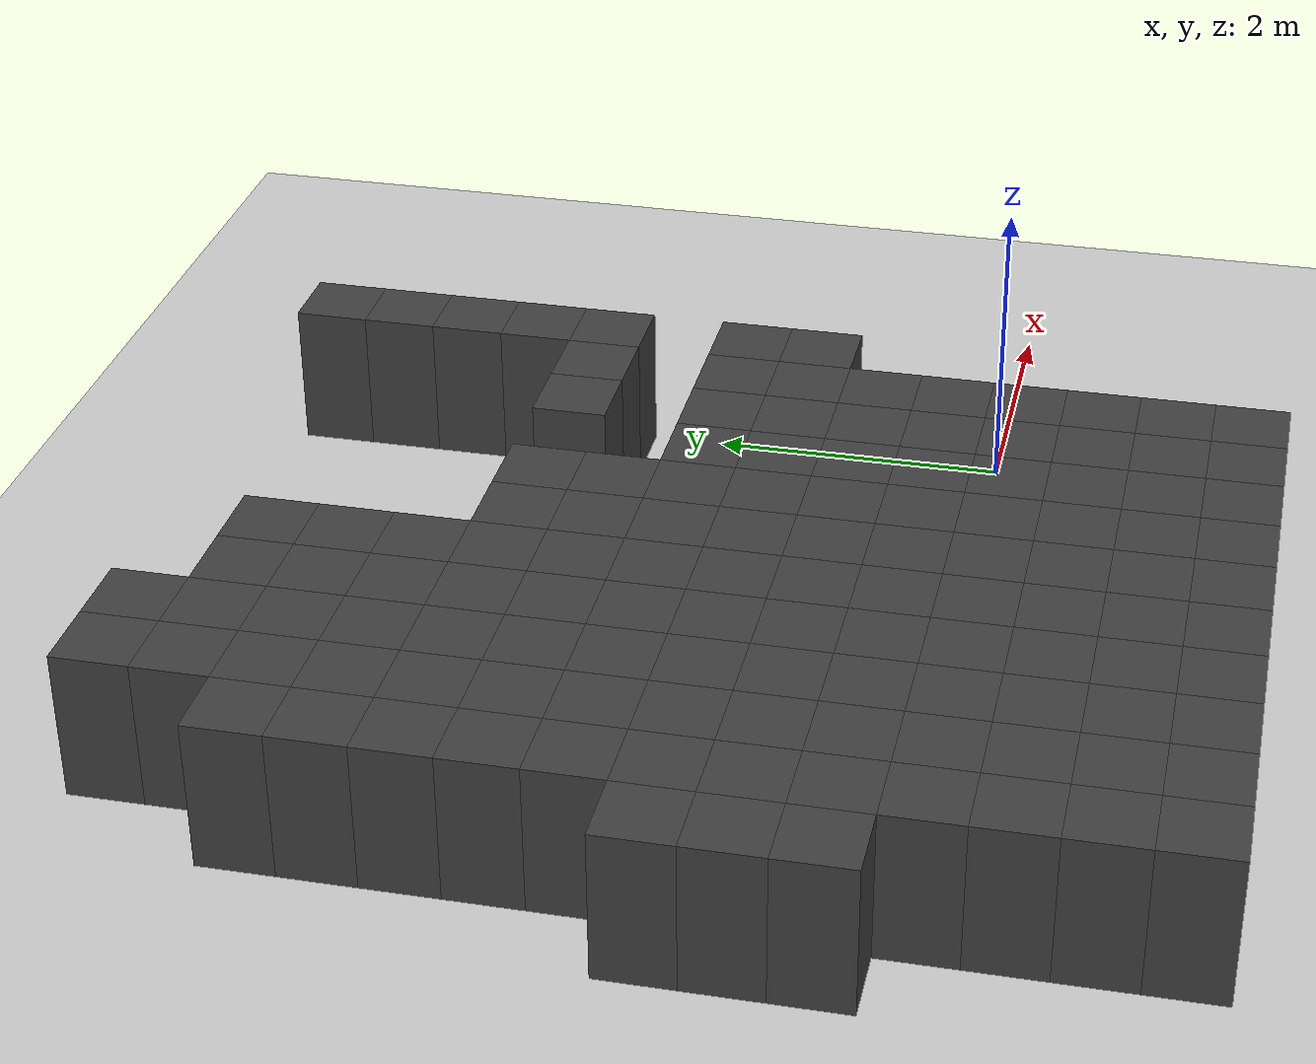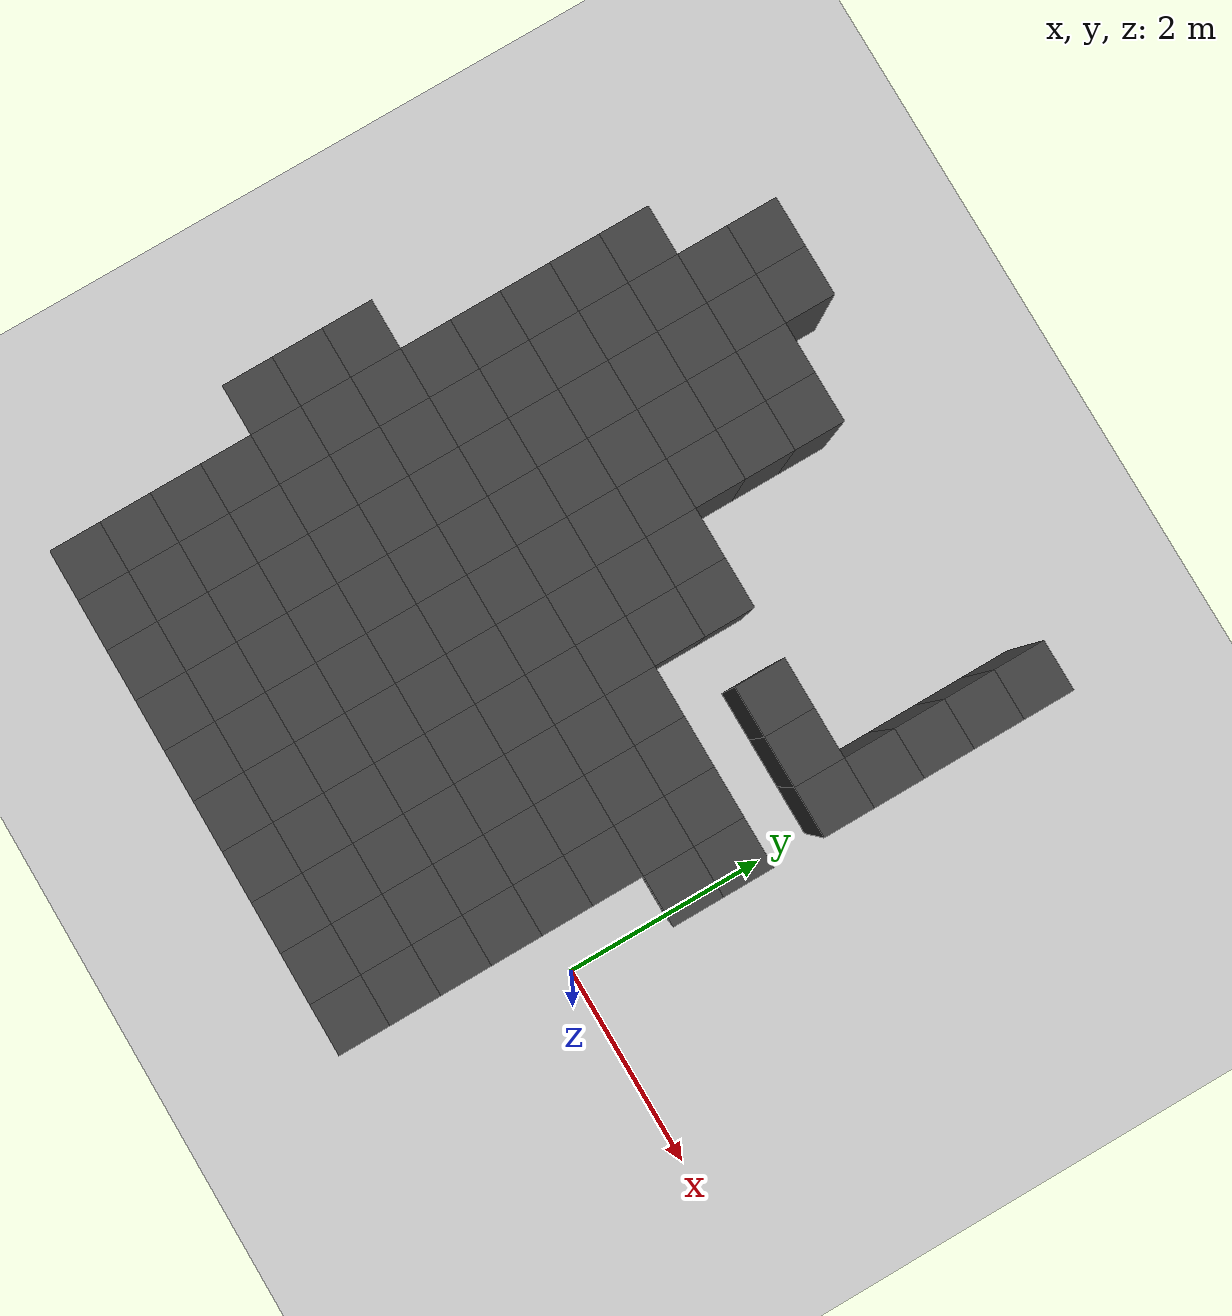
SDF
<sdf version="1.7">
 <world name="map_14888">
  <model name="ground_plane">
   <static>true</static>
   <link name="link">
    <collision name="collision">
     <geometry><plane><normal>0 0 1</normal><size>200 200</size></plane></geometry>
    </collision>
    <visual name="visual">
     <geometry><plane><normal>0 0 1</normal><size>200 200</size></plane></geometry>
     <material><ambient>0.8 0.8 0.8 1</ambient><diffuse>0.8 0.8 0.8 1</diffuse></material>
    </visual>
   </link>
  </model>
  <model name="maze_environment">
   <static>true</static>
   <link name="wall_570">
    <pose>-4.750 4.750 0.500 0 0 0</pose>
    <collision name="col"><geometry><box><size>0.5 0.5 1.0</size></box></geometry></collision>
    <visual name="vis">
     <geometry><box><size>0.5 0.5 1.0</size></box></geometry>
     <material><ambient>0.15 0.15 0.15 1</ambient><diffuse>0.25 0.25 0.25 1</diffuse></material>
    </visual>
   </link>
   <link name="wall_571">
    <pose>-4.250 4.750 0.500 0 0 0</pose>
    <collision name="col"><geometry><box><size>0.5 0.5 1.0</size></box></geometry></collision>
    <visual name="vis">
     <geometry><box><size>0.5 0.5 1.0</size></box></geometry>
     <material><ambient>0.15 0.15 0.15 1</ambient><diffuse>0.25 0.25 0.25 1</diffuse></material>
    </visual>
   </link>
   <link name="wall_572">
    <pose>-0.250 4.750 0.500 0 0 0</pose>
    <collision name="col"><geometry><box><size>0.5 0.5 1.0</size></box></geometry></collision>
    <visual name="vis">
     <geometry><box><size>0.5 0.5 1.0</size></box></geometry>
     <material><ambient>0.15 0.15 0.15 1</ambient><diffuse>0.25 0.25 0.25 1</diffuse></material>
    </visual>
   </link>
   <link name="wall_598">
    <pose>-4.750 4.250 0.500 0 0 0</pose>
    <collision name="col"><geometry><box><size>0.5 0.5 1.0</size></box></geometry></collision>
    <visual name="vis">
     <geometry><box><size>0.5 0.5 1.0</size></box></geometry>
     <material><ambient>0.15 0.15 0.15 1</ambient><diffuse>0.25 0.25 0.25 1</diffuse></material>
    </visual>
   </link>
   <link name="wall_599">
    <pose>-4.250 4.250 0.500 0 0 0</pose>
    <collision name="col"><geometry><box><size>0.5 0.5 1.0</size></box></geometry></collision>
    <visual name="vis">
     <geometry><box><size>0.5 0.5 1.0</size></box></geometry>
     <material><ambient>0.15 0.15 0.15 1</ambient><diffuse>0.25 0.25 0.25 1</diffuse></material>
    </visual>
   </link>
   <link name="wall_600">
    <pose>-3.750 4.250 0.500 0 0 0</pose>
    <collision name="col"><geometry><box><size>0.5 0.5 1.0</size></box></geometry></collision>
    <visual name="vis">
     <geometry><box><size>0.5 0.5 1.0</size></box></geometry>
     <material><ambient>0.15 0.15 0.15 1</ambient><diffuse>0.25 0.25 0.25 1</diffuse></material>
    </visual>
   </link>
   <link name="wall_601">
    <pose>-3.250 4.250 0.500 0 0 0</pose>
    <collision name="col"><geometry><box><size>0.5 0.5 1.0</size></box></geometry></collision>
    <visual name="vis">
     <geometry><box><size>0.5 0.5 1.0</size></box></geometry>
     <material><ambient>0.15 0.15 0.15 1</ambient><diffuse>0.25 0.25 0.25 1</diffuse></material>
    </visual>
   </link>
   <link name="wall_602">
    <pose>-0.250 4.250 0.500 0 0 0</pose>
    <collision name="col"><geometry><box><size>0.5 0.5 1.0</size></box></geometry></collision>
    <visual name="vis">
     <geometry><box><size>0.5 0.5 1.0</size></box></geometry>
     <material><ambient>0.15 0.15 0.15 1</ambient><diffuse>0.25 0.25 0.25 1</diffuse></material>
    </visual>
   </link>
   <link name="wall_622">
    <pose>-5.250 3.750 0.500 0 0 0</pose>
    <collision name="col"><geometry><box><size>0.5 0.5 1.0</size></box></geometry></collision>
    <visual name="vis">
     <geometry><box><size>0.5 0.5 1.0</size></box></geometry>
     <material><ambient>0.15 0.15 0.15 1</ambient><diffuse>0.25 0.25 0.25 1</diffuse></material>
    </visual>
   </link>
   <link name="wall_623">
    <pose>-4.750 3.750 0.500 0 0 0</pose>
    <collision name="col"><geometry><box><size>0.5 0.5 1.0</size></box></geometry></collision>
    <visual name="vis">
     <geometry><box><size>0.5 0.5 1.0</size></box></geometry>
     <material><ambient>0.15 0.15 0.15 1</ambient><diffuse>0.25 0.25 0.25 1</diffuse></material>
    </visual>
   </link>
   <link name="wall_624">
    <pose>-4.250 3.750 0.500 0 0 0</pose>
    <collision name="col"><geometry><box><size>0.5 0.5 1.0</size></box></geometry></collision>
    <visual name="vis">
     <geometry><box><size>0.5 0.5 1.0</size></box></geometry>
     <material><ambient>0.15 0.15 0.15 1</ambient><diffuse>0.25 0.25 0.25 1</diffuse></material>
    </visual>
   </link>
   <link name="wall_625">
    <pose>-3.750 3.750 0.500 0 0 0</pose>
    <collision name="col"><geometry><box><size>0.5 0.5 1.0</size></box></geometry></collision>
    <visual name="vis">
     <geometry><box><size>0.5 0.5 1.0</size></box></geometry>
     <material><ambient>0.15 0.15 0.15 1</ambient><diffuse>0.25 0.25 0.25 1</diffuse></material>
    </visual>
   </link>
   <link name="wall_626">
    <pose>-3.250 3.750 0.500 0 0 0</pose>
    <collision name="col"><geometry><box><size>0.5 0.5 1.0</size></box></geometry></collision>
    <visual name="vis">
     <geometry><box><size>0.5 0.5 1.0</size></box></geometry>
     <material><ambient>0.15 0.15 0.15 1</ambient><diffuse>0.25 0.25 0.25 1</diffuse></material>
    </visual>
   </link>
   <link name="wall_627">
    <pose>-0.250 3.750 0.500 0 0 0</pose>
    <collision name="col"><geometry><box><size>0.5 0.5 1.0</size></box></geometry></collision>
    <visual name="vis">
     <geometry><box><size>0.5 0.5 1.0</size></box></geometry>
     <material><ambient>0.15 0.15 0.15 1</ambient><diffuse>0.25 0.25 0.25 1</diffuse></material>
    </visual>
   </link>
   <link name="wall_642">
    <pose>-5.250 3.250 0.500 0 0 0</pose>
    <collision name="col"><geometry><box><size>0.5 0.5 1.0</size></box></geometry></collision>
    <visual name="vis">
     <geometry><box><size>0.5 0.5 1.0</size></box></geometry>
     <material><ambient>0.15 0.15 0.15 1</ambient><diffuse>0.25 0.25 0.25 1</diffuse></material>
    </visual>
   </link>
   <link name="wall_643">
    <pose>-4.750 3.250 0.500 0 0 0</pose>
    <collision name="col"><geometry><box><size>0.5 0.5 1.0</size></box></geometry></collision>
    <visual name="vis">
     <geometry><box><size>0.5 0.5 1.0</size></box></geometry>
     <material><ambient>0.15 0.15 0.15 1</ambient><diffuse>0.25 0.25 0.25 1</diffuse></material>
    </visual>
   </link>
   <link name="wall_644">
    <pose>-4.250 3.250 0.500 0 0 0</pose>
    <collision name="col"><geometry><box><size>0.5 0.5 1.0</size></box></geometry></collision>
    <visual name="vis">
     <geometry><box><size>0.5 0.5 1.0</size></box></geometry>
     <material><ambient>0.15 0.15 0.15 1</ambient><diffuse>0.25 0.25 0.25 1</diffuse></material>
    </visual>
   </link>
   <link name="wall_645">
    <pose>-3.750 3.250 0.500 0 0 0</pose>
    <collision name="col"><geometry><box><size>0.5 0.5 1.0</size></box></geometry></collision>
    <visual name="vis">
     <geometry><box><size>0.5 0.5 1.0</size></box></geometry>
     <material><ambient>0.15 0.15 0.15 1</ambient><diffuse>0.25 0.25 0.25 1</diffuse></material>
    </visual>
   </link>
   <link name="wall_646">
    <pose>-3.250 3.250 0.500 0 0 0</pose>
    <collision name="col"><geometry><box><size>0.5 0.5 1.0</size></box></geometry></collision>
    <visual name="vis">
     <geometry><box><size>0.5 0.5 1.0</size></box></geometry>
     <material><ambient>0.15 0.15 0.15 1</ambient><diffuse>0.25 0.25 0.25 1</diffuse></material>
    </visual>
   </link>
   <link name="wall_647">
    <pose>-0.250 3.250 0.500 0 0 0</pose>
    <collision name="col"><geometry><box><size>0.5 0.5 1.0</size></box></geometry></collision>
    <visual name="vis">
     <geometry><box><size>0.5 0.5 1.0</size></box></geometry>
     <material><ambient>0.15 0.15 0.15 1</ambient><diffuse>0.25 0.25 0.25 1</diffuse></material>
    </visual>
   </link>
   <link name="wall_662">
    <pose>-5.250 2.750 0.500 0 0 0</pose>
    <collision name="col"><geometry><box><size>0.5 0.5 1.0</size></box></geometry></collision>
    <visual name="vis">
     <geometry><box><size>0.5 0.5 1.0</size></box></geometry>
     <material><ambient>0.15 0.15 0.15 1</ambient><diffuse>0.25 0.25 0.25 1</diffuse></material>
    </visual>
   </link>
   <link name="wall_663">
    <pose>-4.750 2.750 0.500 0 0 0</pose>
    <collision name="col"><geometry><box><size>0.5 0.5 1.0</size></box></geometry></collision>
    <visual name="vis">
     <geometry><box><size>0.5 0.5 1.0</size></box></geometry>
     <material><ambient>0.15 0.15 0.15 1</ambient><diffuse>0.25 0.25 0.25 1</diffuse></material>
    </visual>
   </link>
   <link name="wall_664">
    <pose>-4.250 2.750 0.500 0 0 0</pose>
    <collision name="col"><geometry><box><size>0.5 0.5 1.0</size></box></geometry></collision>
    <visual name="vis">
     <geometry><box><size>0.5 0.5 1.0</size></box></geometry>
     <material><ambient>0.15 0.15 0.15 1</ambient><diffuse>0.25 0.25 0.25 1</diffuse></material>
    </visual>
   </link>
   <link name="wall_665">
    <pose>-3.750 2.750 0.500 0 0 0</pose>
    <collision name="col"><geometry><box><size>0.5 0.5 1.0</size></box></geometry></collision>
    <visual name="vis">
     <geometry><box><size>0.5 0.5 1.0</size></box></geometry>
     <material><ambient>0.15 0.15 0.15 1</ambient><diffuse>0.25 0.25 0.25 1</diffuse></material>
    </visual>
   </link>
   <link name="wall_666">
    <pose>-3.250 2.750 0.500 0 0 0</pose>
    <collision name="col"><geometry><box><size>0.5 0.5 1.0</size></box></geometry></collision>
    <visual name="vis">
     <geometry><box><size>0.5 0.5 1.0</size></box></geometry>
     <material><ambient>0.15 0.15 0.15 1</ambient><diffuse>0.25 0.25 0.25 1</diffuse></material>
    </visual>
   </link>
   <link name="wall_667">
    <pose>-2.750 2.750 0.500 0 0 0</pose>
    <collision name="col"><geometry><box><size>0.5 0.5 1.0</size></box></geometry></collision>
    <visual name="vis">
     <geometry><box><size>0.5 0.5 1.0</size></box></geometry>
     <material><ambient>0.15 0.15 0.15 1</ambient><diffuse>0.25 0.25 0.25 1</diffuse></material>
    </visual>
   </link>
   <link name="wall_668">
    <pose>-2.250 2.750 0.500 0 0 0</pose>
    <collision name="col"><geometry><box><size>0.5 0.5 1.0</size></box></geometry></collision>
    <visual name="vis">
     <geometry><box><size>0.5 0.5 1.0</size></box></geometry>
     <material><ambient>0.15 0.15 0.15 1</ambient><diffuse>0.25 0.25 0.25 1</diffuse></material>
    </visual>
   </link>
   <link name="wall_669">
    <pose>-1.250 2.750 0.500 0 0 0</pose>
    <collision name="col"><geometry><box><size>0.5 0.5 1.0</size></box></geometry></collision>
    <visual name="vis">
     <geometry><box><size>0.5 0.5 1.0</size></box></geometry>
     <material><ambient>0.15 0.15 0.15 1</ambient><diffuse>0.25 0.25 0.25 1</diffuse></material>
    </visual>
   </link>
   <link name="wall_670">
    <pose>-0.750 2.750 0.500 0 0 0</pose>
    <collision name="col"><geometry><box><size>0.5 0.5 1.0</size></box></geometry></collision>
    <visual name="vis">
     <geometry><box><size>0.5 0.5 1.0</size></box></geometry>
     <material><ambient>0.15 0.15 0.15 1</ambient><diffuse>0.25 0.25 0.25 1</diffuse></material>
    </visual>
   </link>
   <link name="wall_671">
    <pose>-0.250 2.750 0.500 0 0 0</pose>
    <collision name="col"><geometry><box><size>0.5 0.5 1.0</size></box></geometry></collision>
    <visual name="vis">
     <geometry><box><size>0.5 0.5 1.0</size></box></geometry>
     <material><ambient>0.15 0.15 0.15 1</ambient><diffuse>0.25 0.25 0.25 1</diffuse></material>
    </visual>
   </link>
   <link name="wall_686">
    <pose>-5.250 2.250 0.500 0 0 0</pose>
    <collision name="col"><geometry><box><size>0.5 0.5 1.0</size></box></geometry></collision>
    <visual name="vis">
     <geometry><box><size>0.5 0.5 1.0</size></box></geometry>
     <material><ambient>0.15 0.15 0.15 1</ambient><diffuse>0.25 0.25 0.25 1</diffuse></material>
    </visual>
   </link>
   <link name="wall_687">
    <pose>-4.750 2.250 0.500 0 0 0</pose>
    <collision name="col"><geometry><box><size>0.5 0.5 1.0</size></box></geometry></collision>
    <visual name="vis">
     <geometry><box><size>0.5 0.5 1.0</size></box></geometry>
     <material><ambient>0.15 0.15 0.15 1</ambient><diffuse>0.25 0.25 0.25 1</diffuse></material>
    </visual>
   </link>
   <link name="wall_688">
    <pose>-4.250 2.250 0.500 0 0 0</pose>
    <collision name="col"><geometry><box><size>0.5 0.5 1.0</size></box></geometry></collision>
    <visual name="vis">
     <geometry><box><size>0.5 0.5 1.0</size></box></geometry>
     <material><ambient>0.15 0.15 0.15 1</ambient><diffuse>0.25 0.25 0.25 1</diffuse></material>
    </visual>
   </link>
   <link name="wall_689">
    <pose>-3.750 2.250 0.500 0 0 0</pose>
    <collision name="col"><geometry><box><size>0.5 0.5 1.0</size></box></geometry></collision>
    <visual name="vis">
     <geometry><box><size>0.5 0.5 1.0</size></box></geometry>
     <material><ambient>0.15 0.15 0.15 1</ambient><diffuse>0.25 0.25 0.25 1</diffuse></material>
    </visual>
   </link>
   <link name="wall_690">
    <pose>-3.250 2.250 0.500 0 0 0</pose>
    <collision name="col"><geometry><box><size>0.5 0.5 1.0</size></box></geometry></collision>
    <visual name="vis">
     <geometry><box><size>0.5 0.5 1.0</size></box></geometry>
     <material><ambient>0.15 0.15 0.15 1</ambient><diffuse>0.25 0.25 0.25 1</diffuse></material>
    </visual>
   </link>
   <link name="wall_691">
    <pose>-2.750 2.250 0.500 0 0 0</pose>
    <collision name="col"><geometry><box><size>0.5 0.5 1.0</size></box></geometry></collision>
    <visual name="vis">
     <geometry><box><size>0.5 0.5 1.0</size></box></geometry>
     <material><ambient>0.15 0.15 0.15 1</ambient><diffuse>0.25 0.25 0.25 1</diffuse></material>
    </visual>
   </link>
   <link name="wall_692">
    <pose>-2.250 2.250 0.500 0 0 0</pose>
    <collision name="col"><geometry><box><size>0.5 0.5 1.0</size></box></geometry></collision>
    <visual name="vis">
     <geometry><box><size>0.5 0.5 1.0</size></box></geometry>
     <material><ambient>0.15 0.15 0.15 1</ambient><diffuse>0.25 0.25 0.25 1</diffuse></material>
    </visual>
   </link>
   <link name="wall_710">
    <pose>-5.250 1.750 0.500 0 0 0</pose>
    <collision name="col"><geometry><box><size>0.5 0.5 1.0</size></box></geometry></collision>
    <visual name="vis">
     <geometry><box><size>0.5 0.5 1.0</size></box></geometry>
     <material><ambient>0.15 0.15 0.15 1</ambient><diffuse>0.25 0.25 0.25 1</diffuse></material>
    </visual>
   </link>
   <link name="wall_711">
    <pose>-4.750 1.750 0.500 0 0 0</pose>
    <collision name="col"><geometry><box><size>0.5 0.5 1.0</size></box></geometry></collision>
    <visual name="vis">
     <geometry><box><size>0.5 0.5 1.0</size></box></geometry>
     <material><ambient>0.15 0.15 0.15 1</ambient><diffuse>0.25 0.25 0.25 1</diffuse></material>
    </visual>
   </link>
   <link name="wall_712">
    <pose>-4.250 1.750 0.500 0 0 0</pose>
    <collision name="col"><geometry><box><size>0.5 0.5 1.0</size></box></geometry></collision>
    <visual name="vis">
     <geometry><box><size>0.5 0.5 1.0</size></box></geometry>
     <material><ambient>0.15 0.15 0.15 1</ambient><diffuse>0.25 0.25 0.25 1</diffuse></material>
    </visual>
   </link>
   <link name="wall_713">
    <pose>-3.750 1.750 0.500 0 0 0</pose>
    <collision name="col"><geometry><box><size>0.5 0.5 1.0</size></box></geometry></collision>
    <visual name="vis">
     <geometry><box><size>0.5 0.5 1.0</size></box></geometry>
     <material><ambient>0.15 0.15 0.15 1</ambient><diffuse>0.25 0.25 0.25 1</diffuse></material>
    </visual>
   </link>
   <link name="wall_714">
    <pose>-3.250 1.750 0.500 0 0 0</pose>
    <collision name="col"><geometry><box><size>0.5 0.5 1.0</size></box></geometry></collision>
    <visual name="vis">
     <geometry><box><size>0.5 0.5 1.0</size></box></geometry>
     <material><ambient>0.15 0.15 0.15 1</ambient><diffuse>0.25 0.25 0.25 1</diffuse></material>
    </visual>
   </link>
   <link name="wall_715">
    <pose>-2.750 1.750 0.500 0 0 0</pose>
    <collision name="col"><geometry><box><size>0.5 0.5 1.0</size></box></geometry></collision>
    <visual name="vis">
     <geometry><box><size>0.5 0.5 1.0</size></box></geometry>
     <material><ambient>0.15 0.15 0.15 1</ambient><diffuse>0.25 0.25 0.25 1</diffuse></material>
    </visual>
   </link>
   <link name="wall_716">
    <pose>-2.250 1.750 0.500 0 0 0</pose>
    <collision name="col"><geometry><box><size>0.5 0.5 1.0</size></box></geometry></collision>
    <visual name="vis">
     <geometry><box><size>0.5 0.5 1.0</size></box></geometry>
     <material><ambient>0.15 0.15 0.15 1</ambient><diffuse>0.25 0.25 0.25 1</diffuse></material>
    </visual>
   </link>
   <link name="wall_717">
    <pose>-1.750 1.750 0.500 0 0 0</pose>
    <collision name="col"><geometry><box><size>0.5 0.5 1.0</size></box></geometry></collision>
    <visual name="vis">
     <geometry><box><size>0.5 0.5 1.0</size></box></geometry>
     <material><ambient>0.15 0.15 0.15 1</ambient><diffuse>0.25 0.25 0.25 1</diffuse></material>
    </visual>
   </link>
   <link name="wall_718">
    <pose>-1.250 1.750 0.500 0 0 0</pose>
    <collision name="col"><geometry><box><size>0.5 0.5 1.0</size></box></geometry></collision>
    <visual name="vis">
     <geometry><box><size>0.5 0.5 1.0</size></box></geometry>
     <material><ambient>0.15 0.15 0.15 1</ambient><diffuse>0.25 0.25 0.25 1</diffuse></material>
    </visual>
   </link>
   <link name="wall_719">
    <pose>-0.750 1.750 0.500 0 0 0</pose>
    <collision name="col"><geometry><box><size>0.5 0.5 1.0</size></box></geometry></collision>
    <visual name="vis">
     <geometry><box><size>0.5 0.5 1.0</size></box></geometry>
     <material><ambient>0.15 0.15 0.15 1</ambient><diffuse>0.25 0.25 0.25 1</diffuse></material>
    </visual>
   </link>
   <link name="wall_720">
    <pose>-0.250 1.750 0.500 0 0 0</pose>
    <collision name="col"><geometry><box><size>0.5 0.5 1.0</size></box></geometry></collision>
    <visual name="vis">
     <geometry><box><size>0.5 0.5 1.0</size></box></geometry>
     <material><ambient>0.15 0.15 0.15 1</ambient><diffuse>0.25 0.25 0.25 1</diffuse></material>
    </visual>
   </link>
   <link name="wall_751">
    <pose>-5.750 1.250 0.500 0 0 0</pose>
    <collision name="col"><geometry><box><size>0.5 0.5 1.0</size></box></geometry></collision>
    <visual name="vis">
     <geometry><box><size>0.5 0.5 1.0</size></box></geometry>
     <material><ambient>0.15 0.15 0.15 1</ambient><diffuse>0.25 0.25 0.25 1</diffuse></material>
    </visual>
   </link>
   <link name="wall_752">
    <pose>-5.250 1.250 0.500 0 0 0</pose>
    <collision name="col"><geometry><box><size>0.5 0.5 1.0</size></box></geometry></collision>
    <visual name="vis">
     <geometry><box><size>0.5 0.5 1.0</size></box></geometry>
     <material><ambient>0.15 0.15 0.15 1</ambient><diffuse>0.25 0.25 0.25 1</diffuse></material>
    </visual>
   </link>
   <link name="wall_753">
    <pose>-4.750 1.250 0.500 0 0 0</pose>
    <collision name="col"><geometry><box><size>0.5 0.5 1.0</size></box></geometry></collision>
    <visual name="vis">
     <geometry><box><size>0.5 0.5 1.0</size></box></geometry>
     <material><ambient>0.15 0.15 0.15 1</ambient><diffuse>0.25 0.25 0.25 1</diffuse></material>
    </visual>
   </link>
   <link name="wall_754">
    <pose>-4.250 1.250 0.500 0 0 0</pose>
    <collision name="col"><geometry><box><size>0.5 0.5 1.0</size></box></geometry></collision>
    <visual name="vis">
     <geometry><box><size>0.5 0.5 1.0</size></box></geometry>
     <material><ambient>0.15 0.15 0.15 1</ambient><diffuse>0.25 0.25 0.25 1</diffuse></material>
    </visual>
   </link>
   <link name="wall_755">
    <pose>-3.750 1.250 0.500 0 0 0</pose>
    <collision name="col"><geometry><box><size>0.5 0.5 1.0</size></box></geometry></collision>
    <visual name="vis">
     <geometry><box><size>0.5 0.5 1.0</size></box></geometry>
     <material><ambient>0.15 0.15 0.15 1</ambient><diffuse>0.25 0.25 0.25 1</diffuse></material>
    </visual>
   </link>
   <link name="wall_756">
    <pose>-3.250 1.250 0.500 0 0 0</pose>
    <collision name="col"><geometry><box><size>0.5 0.5 1.0</size></box></geometry></collision>
    <visual name="vis">
     <geometry><box><size>0.5 0.5 1.0</size></box></geometry>
     <material><ambient>0.15 0.15 0.15 1</ambient><diffuse>0.25 0.25 0.25 1</diffuse></material>
    </visual>
   </link>
   <link name="wall_757">
    <pose>-2.750 1.250 0.500 0 0 0</pose>
    <collision name="col"><geometry><box><size>0.5 0.5 1.0</size></box></geometry></collision>
    <visual name="vis">
     <geometry><box><size>0.5 0.5 1.0</size></box></geometry>
     <material><ambient>0.15 0.15 0.15 1</ambient><diffuse>0.25 0.25 0.25 1</diffuse></material>
    </visual>
   </link>
   <link name="wall_758">
    <pose>-2.250 1.250 0.500 0 0 0</pose>
    <collision name="col"><geometry><box><size>0.5 0.5 1.0</size></box></geometry></collision>
    <visual name="vis">
     <geometry><box><size>0.5 0.5 1.0</size></box></geometry>
     <material><ambient>0.15 0.15 0.15 1</ambient><diffuse>0.25 0.25 0.25 1</diffuse></material>
    </visual>
   </link>
   <link name="wall_759">
    <pose>-1.750 1.250 0.500 0 0 0</pose>
    <collision name="col"><geometry><box><size>0.5 0.5 1.0</size></box></geometry></collision>
    <visual name="vis">
     <geometry><box><size>0.5 0.5 1.0</size></box></geometry>
     <material><ambient>0.15 0.15 0.15 1</ambient><diffuse>0.25 0.25 0.25 1</diffuse></material>
    </visual>
   </link>
   <link name="wall_760">
    <pose>-1.250 1.250 0.500 0 0 0</pose>
    <collision name="col"><geometry><box><size>0.5 0.5 1.0</size></box></geometry></collision>
    <visual name="vis">
     <geometry><box><size>0.5 0.5 1.0</size></box></geometry>
     <material><ambient>0.15 0.15 0.15 1</ambient><diffuse>0.25 0.25 0.25 1</diffuse></material>
    </visual>
   </link>
   <link name="wall_761">
    <pose>-0.750 1.250 0.500 0 0 0</pose>
    <collision name="col"><geometry><box><size>0.5 0.5 1.0</size></box></geometry></collision>
    <visual name="vis">
     <geometry><box><size>0.5 0.5 1.0</size></box></geometry>
     <material><ambient>0.15 0.15 0.15 1</ambient><diffuse>0.25 0.25 0.25 1</diffuse></material>
    </visual>
   </link>
   <link name="wall_762">
    <pose>-0.250 1.250 0.500 0 0 0</pose>
    <collision name="col"><geometry><box><size>0.5 0.5 1.0</size></box></geometry></collision>
    <visual name="vis">
     <geometry><box><size>0.5 0.5 1.0</size></box></geometry>
     <material><ambient>0.15 0.15 0.15 1</ambient><diffuse>0.25 0.25 0.25 1</diffuse></material>
    </visual>
   </link>
   <link name="wall_793">
    <pose>-5.750 0.750 0.500 0 0 0</pose>
    <collision name="col"><geometry><box><size>0.5 0.5 1.0</size></box></geometry></collision>
    <visual name="vis">
     <geometry><box><size>0.5 0.5 1.0</size></box></geometry>
     <material><ambient>0.15 0.15 0.15 1</ambient><diffuse>0.25 0.25 0.25 1</diffuse></material>
    </visual>
   </link>
   <link name="wall_794">
    <pose>-5.250 0.750 0.500 0 0 0</pose>
    <collision name="col"><geometry><box><size>0.5 0.5 1.0</size></box></geometry></collision>
    <visual name="vis">
     <geometry><box><size>0.5 0.5 1.0</size></box></geometry>
     <material><ambient>0.15 0.15 0.15 1</ambient><diffuse>0.25 0.25 0.25 1</diffuse></material>
    </visual>
   </link>
   <link name="wall_795">
    <pose>-4.750 0.750 0.500 0 0 0</pose>
    <collision name="col"><geometry><box><size>0.5 0.5 1.0</size></box></geometry></collision>
    <visual name="vis">
     <geometry><box><size>0.5 0.5 1.0</size></box></geometry>
     <material><ambient>0.15 0.15 0.15 1</ambient><diffuse>0.25 0.25 0.25 1</diffuse></material>
    </visual>
   </link>
   <link name="wall_796">
    <pose>-4.250 0.750 0.500 0 0 0</pose>
    <collision name="col"><geometry><box><size>0.5 0.5 1.0</size></box></geometry></collision>
    <visual name="vis">
     <geometry><box><size>0.5 0.5 1.0</size></box></geometry>
     <material><ambient>0.15 0.15 0.15 1</ambient><diffuse>0.25 0.25 0.25 1</diffuse></material>
    </visual>
   </link>
   <link name="wall_797">
    <pose>-3.750 0.750 0.500 0 0 0</pose>
    <collision name="col"><geometry><box><size>0.5 0.5 1.0</size></box></geometry></collision>
    <visual name="vis">
     <geometry><box><size>0.5 0.5 1.0</size></box></geometry>
     <material><ambient>0.15 0.15 0.15 1</ambient><diffuse>0.25 0.25 0.25 1</diffuse></material>
    </visual>
   </link>
   <link name="wall_798">
    <pose>-3.250 0.750 0.500 0 0 0</pose>
    <collision name="col"><geometry><box><size>0.5 0.5 1.0</size></box></geometry></collision>
    <visual name="vis">
     <geometry><box><size>0.5 0.5 1.0</size></box></geometry>
     <material><ambient>0.15 0.15 0.15 1</ambient><diffuse>0.25 0.25 0.25 1</diffuse></material>
    </visual>
   </link>
   <link name="wall_799">
    <pose>-2.750 0.750 0.500 0 0 0</pose>
    <collision name="col"><geometry><box><size>0.5 0.5 1.0</size></box></geometry></collision>
    <visual name="vis">
     <geometry><box><size>0.5 0.5 1.0</size></box></geometry>
     <material><ambient>0.15 0.15 0.15 1</ambient><diffuse>0.25 0.25 0.25 1</diffuse></material>
    </visual>
   </link>
   <link name="wall_800">
    <pose>-2.250 0.750 0.500 0 0 0</pose>
    <collision name="col"><geometry><box><size>0.5 0.5 1.0</size></box></geometry></collision>
    <visual name="vis">
     <geometry><box><size>0.5 0.5 1.0</size></box></geometry>
     <material><ambient>0.15 0.15 0.15 1</ambient><diffuse>0.25 0.25 0.25 1</diffuse></material>
    </visual>
   </link>
   <link name="wall_801">
    <pose>-1.750 0.750 0.500 0 0 0</pose>
    <collision name="col"><geometry><box><size>0.5 0.5 1.0</size></box></geometry></collision>
    <visual name="vis">
     <geometry><box><size>0.5 0.5 1.0</size></box></geometry>
     <material><ambient>0.15 0.15 0.15 1</ambient><diffuse>0.25 0.25 0.25 1</diffuse></material>
    </visual>
   </link>
   <link name="wall_802">
    <pose>-1.250 0.750 0.500 0 0 0</pose>
    <collision name="col"><geometry><box><size>0.5 0.5 1.0</size></box></geometry></collision>
    <visual name="vis">
     <geometry><box><size>0.5 0.5 1.0</size></box></geometry>
     <material><ambient>0.15 0.15 0.15 1</ambient><diffuse>0.25 0.25 0.25 1</diffuse></material>
    </visual>
   </link>
   <link name="wall_803">
    <pose>-0.750 0.750 0.500 0 0 0</pose>
    <collision name="col"><geometry><box><size>0.5 0.5 1.0</size></box></geometry></collision>
    <visual name="vis">
     <geometry><box><size>0.5 0.5 1.0</size></box></geometry>
     <material><ambient>0.15 0.15 0.15 1</ambient><diffuse>0.25 0.25 0.25 1</diffuse></material>
    </visual>
   </link>
   <link name="wall_831">
    <pose>-5.750 0.250 0.500 0 0 0</pose>
    <collision name="col"><geometry><box><size>0.5 0.5 1.0</size></box></geometry></collision>
    <visual name="vis">
     <geometry><box><size>0.5 0.5 1.0</size></box></geometry>
     <material><ambient>0.15 0.15 0.15 1</ambient><diffuse>0.25 0.25 0.25 1</diffuse></material>
    </visual>
   </link>
   <link name="wall_832">
    <pose>-5.250 0.250 0.500 0 0 0</pose>
    <collision name="col"><geometry><box><size>0.5 0.5 1.0</size></box></geometry></collision>
    <visual name="vis">
     <geometry><box><size>0.5 0.5 1.0</size></box></geometry>
     <material><ambient>0.15 0.15 0.15 1</ambient><diffuse>0.25 0.25 0.25 1</diffuse></material>
    </visual>
   </link>
   <link name="wall_833">
    <pose>-4.750 0.250 0.500 0 0 0</pose>
    <collision name="col"><geometry><box><size>0.5 0.5 1.0</size></box></geometry></collision>
    <visual name="vis">
     <geometry><box><size>0.5 0.5 1.0</size></box></geometry>
     <material><ambient>0.15 0.15 0.15 1</ambient><diffuse>0.25 0.25 0.25 1</diffuse></material>
    </visual>
   </link>
   <link name="wall_834">
    <pose>-4.250 0.250 0.500 0 0 0</pose>
    <collision name="col"><geometry><box><size>0.5 0.5 1.0</size></box></geometry></collision>
    <visual name="vis">
     <geometry><box><size>0.5 0.5 1.0</size></box></geometry>
     <material><ambient>0.15 0.15 0.15 1</ambient><diffuse>0.25 0.25 0.25 1</diffuse></material>
    </visual>
   </link>
   <link name="wall_835">
    <pose>-3.750 0.250 0.500 0 0 0</pose>
    <collision name="col"><geometry><box><size>0.5 0.5 1.0</size></box></geometry></collision>
    <visual name="vis">
     <geometry><box><size>0.5 0.5 1.0</size></box></geometry>
     <material><ambient>0.15 0.15 0.15 1</ambient><diffuse>0.25 0.25 0.25 1</diffuse></material>
    </visual>
   </link>
   <link name="wall_836">
    <pose>-3.250 0.250 0.500 0 0 0</pose>
    <collision name="col"><geometry><box><size>0.5 0.5 1.0</size></box></geometry></collision>
    <visual name="vis">
     <geometry><box><size>0.5 0.5 1.0</size></box></geometry>
     <material><ambient>0.15 0.15 0.15 1</ambient><diffuse>0.25 0.25 0.25 1</diffuse></material>
    </visual>
   </link>
   <link name="wall_837">
    <pose>-2.750 0.250 0.500 0 0 0</pose>
    <collision name="col"><geometry><box><size>0.5 0.5 1.0</size></box></geometry></collision>
    <visual name="vis">
     <geometry><box><size>0.5 0.5 1.0</size></box></geometry>
     <material><ambient>0.15 0.15 0.15 1</ambient><diffuse>0.25 0.25 0.25 1</diffuse></material>
    </visual>
   </link>
   <link name="wall_838">
    <pose>-2.250 0.250 0.500 0 0 0</pose>
    <collision name="col"><geometry><box><size>0.5 0.5 1.0</size></box></geometry></collision>
    <visual name="vis">
     <geometry><box><size>0.5 0.5 1.0</size></box></geometry>
     <material><ambient>0.15 0.15 0.15 1</ambient><diffuse>0.25 0.25 0.25 1</diffuse></material>
    </visual>
   </link>
   <link name="wall_839">
    <pose>-1.750 0.250 0.500 0 0 0</pose>
    <collision name="col"><geometry><box><size>0.5 0.5 1.0</size></box></geometry></collision>
    <visual name="vis">
     <geometry><box><size>0.5 0.5 1.0</size></box></geometry>
     <material><ambient>0.15 0.15 0.15 1</ambient><diffuse>0.25 0.25 0.25 1</diffuse></material>
    </visual>
   </link>
   <link name="wall_840">
    <pose>-1.250 0.250 0.500 0 0 0</pose>
    <collision name="col"><geometry><box><size>0.5 0.5 1.0</size></box></geometry></collision>
    <visual name="vis">
     <geometry><box><size>0.5 0.5 1.0</size></box></geometry>
     <material><ambient>0.15 0.15 0.15 1</ambient><diffuse>0.25 0.25 0.25 1</diffuse></material>
    </visual>
   </link>
   <link name="wall_841">
    <pose>-0.750 0.250 0.500 0 0 0</pose>
    <collision name="col"><geometry><box><size>0.5 0.5 1.0</size></box></geometry></collision>
    <visual name="vis">
     <geometry><box><size>0.5 0.5 1.0</size></box></geometry>
     <material><ambient>0.15 0.15 0.15 1</ambient><diffuse>0.25 0.25 0.25 1</diffuse></material>
    </visual>
   </link>
   <link name="wall_873">
    <pose>-5.250 -0.250 0.500 0 0 0</pose>
    <collision name="col"><geometry><box><size>0.5 0.5 1.0</size></box></geometry></collision>
    <visual name="vis">
     <geometry><box><size>0.5 0.5 1.0</size></box></geometry>
     <material><ambient>0.15 0.15 0.15 1</ambient><diffuse>0.25 0.25 0.25 1</diffuse></material>
    </visual>
   </link>
   <link name="wall_874">
    <pose>-4.750 -0.250 0.500 0 0 0</pose>
    <collision name="col"><geometry><box><size>0.5 0.5 1.0</size></box></geometry></collision>
    <visual name="vis">
     <geometry><box><size>0.5 0.5 1.0</size></box></geometry>
     <material><ambient>0.15 0.15 0.15 1</ambient><diffuse>0.25 0.25 0.25 1</diffuse></material>
    </visual>
   </link>
   <link name="wall_875">
    <pose>-4.250 -0.250 0.500 0 0 0</pose>
    <collision name="col"><geometry><box><size>0.5 0.5 1.0</size></box></geometry></collision>
    <visual name="vis">
     <geometry><box><size>0.5 0.5 1.0</size></box></geometry>
     <material><ambient>0.15 0.15 0.15 1</ambient><diffuse>0.25 0.25 0.25 1</diffuse></material>
    </visual>
   </link>
   <link name="wall_876">
    <pose>-3.750 -0.250 0.500 0 0 0</pose>
    <collision name="col"><geometry><box><size>0.5 0.5 1.0</size></box></geometry></collision>
    <visual name="vis">
     <geometry><box><size>0.5 0.5 1.0</size></box></geometry>
     <material><ambient>0.15 0.15 0.15 1</ambient><diffuse>0.25 0.25 0.25 1</diffuse></material>
    </visual>
   </link>
   <link name="wall_877">
    <pose>-3.250 -0.250 0.500 0 0 0</pose>
    <collision name="col"><geometry><box><size>0.5 0.5 1.0</size></box></geometry></collision>
    <visual name="vis">
     <geometry><box><size>0.5 0.5 1.0</size></box></geometry>
     <material><ambient>0.15 0.15 0.15 1</ambient><diffuse>0.25 0.25 0.25 1</diffuse></material>
    </visual>
   </link>
   <link name="wall_878">
    <pose>-2.750 -0.250 0.500 0 0 0</pose>
    <collision name="col"><geometry><box><size>0.5 0.5 1.0</size></box></geometry></collision>
    <visual name="vis">
     <geometry><box><size>0.5 0.5 1.0</size></box></geometry>
     <material><ambient>0.15 0.15 0.15 1</ambient><diffuse>0.25 0.25 0.25 1</diffuse></material>
    </visual>
   </link>
   <link name="wall_879">
    <pose>-2.250 -0.250 0.500 0 0 0</pose>
    <collision name="col"><geometry><box><size>0.5 0.5 1.0</size></box></geometry></collision>
    <visual name="vis">
     <geometry><box><size>0.5 0.5 1.0</size></box></geometry>
     <material><ambient>0.15 0.15 0.15 1</ambient><diffuse>0.25 0.25 0.25 1</diffuse></material>
    </visual>
   </link>
   <link name="wall_880">
    <pose>-1.750 -0.250 0.500 0 0 0</pose>
    <collision name="col"><geometry><box><size>0.5 0.5 1.0</size></box></geometry></collision>
    <visual name="vis">
     <geometry><box><size>0.5 0.5 1.0</size></box></geometry>
     <material><ambient>0.15 0.15 0.15 1</ambient><diffuse>0.25 0.25 0.25 1</diffuse></material>
    </visual>
   </link>
   <link name="wall_881">
    <pose>-1.250 -0.250 0.500 0 0 0</pose>
    <collision name="col"><geometry><box><size>0.5 0.5 1.0</size></box></geometry></collision>
    <visual name="vis">
     <geometry><box><size>0.5 0.5 1.0</size></box></geometry>
     <material><ambient>0.15 0.15 0.15 1</ambient><diffuse>0.25 0.25 0.25 1</diffuse></material>
    </visual>
   </link>
   <link name="wall_882">
    <pose>-0.750 -0.250 0.500 0 0 0</pose>
    <collision name="col"><geometry><box><size>0.5 0.5 1.0</size></box></geometry></collision>
    <visual name="vis">
     <geometry><box><size>0.5 0.5 1.0</size></box></geometry>
     <material><ambient>0.15 0.15 0.15 1</ambient><diffuse>0.25 0.25 0.25 1</diffuse></material>
    </visual>
   </link>
   <link name="wall_914">
    <pose>-5.250 -0.750 0.500 0 0 0</pose>
    <collision name="col"><geometry><box><size>0.5 0.5 1.0</size></box></geometry></collision>
    <visual name="vis">
     <geometry><box><size>0.5 0.5 1.0</size></box></geometry>
     <material><ambient>0.15 0.15 0.15 1</ambient><diffuse>0.25 0.25 0.25 1</diffuse></material>
    </visual>
   </link>
   <link name="wall_915">
    <pose>-4.750 -0.750 0.500 0 0 0</pose>
    <collision name="col"><geometry><box><size>0.5 0.5 1.0</size></box></geometry></collision>
    <visual name="vis">
     <geometry><box><size>0.5 0.5 1.0</size></box></geometry>
     <material><ambient>0.15 0.15 0.15 1</ambient><diffuse>0.25 0.25 0.25 1</diffuse></material>
    </visual>
   </link>
   <link name="wall_916">
    <pose>-4.250 -0.750 0.500 0 0 0</pose>
    <collision name="col"><geometry><box><size>0.5 0.5 1.0</size></box></geometry></collision>
    <visual name="vis">
     <geometry><box><size>0.5 0.5 1.0</size></box></geometry>
     <material><ambient>0.15 0.15 0.15 1</ambient><diffuse>0.25 0.25 0.25 1</diffuse></material>
    </visual>
   </link>
   <link name="wall_917">
    <pose>-3.750 -0.750 0.500 0 0 0</pose>
    <collision name="col"><geometry><box><size>0.5 0.5 1.0</size></box></geometry></collision>
    <visual name="vis">
     <geometry><box><size>0.5 0.5 1.0</size></box></geometry>
     <material><ambient>0.15 0.15 0.15 1</ambient><diffuse>0.25 0.25 0.25 1</diffuse></material>
    </visual>
   </link>
   <link name="wall_918">
    <pose>-3.250 -0.750 0.500 0 0 0</pose>
    <collision name="col"><geometry><box><size>0.5 0.5 1.0</size></box></geometry></collision>
    <visual name="vis">
     <geometry><box><size>0.5 0.5 1.0</size></box></geometry>
     <material><ambient>0.15 0.15 0.15 1</ambient><diffuse>0.25 0.25 0.25 1</diffuse></material>
    </visual>
   </link>
   <link name="wall_919">
    <pose>-2.750 -0.750 0.500 0 0 0</pose>
    <collision name="col"><geometry><box><size>0.5 0.5 1.0</size></box></geometry></collision>
    <visual name="vis">
     <geometry><box><size>0.5 0.5 1.0</size></box></geometry>
     <material><ambient>0.15 0.15 0.15 1</ambient><diffuse>0.25 0.25 0.25 1</diffuse></material>
    </visual>
   </link>
   <link name="wall_920">
    <pose>-2.250 -0.750 0.500 0 0 0</pose>
    <collision name="col"><geometry><box><size>0.5 0.5 1.0</size></box></geometry></collision>
    <visual name="vis">
     <geometry><box><size>0.5 0.5 1.0</size></box></geometry>
     <material><ambient>0.15 0.15 0.15 1</ambient><diffuse>0.25 0.25 0.25 1</diffuse></material>
    </visual>
   </link>
   <link name="wall_921">
    <pose>-1.750 -0.750 0.500 0 0 0</pose>
    <collision name="col"><geometry><box><size>0.5 0.5 1.0</size></box></geometry></collision>
    <visual name="vis">
     <geometry><box><size>0.5 0.5 1.0</size></box></geometry>
     <material><ambient>0.15 0.15 0.15 1</ambient><diffuse>0.25 0.25 0.25 1</diffuse></material>
    </visual>
   </link>
   <link name="wall_922">
    <pose>-1.250 -0.750 0.500 0 0 0</pose>
    <collision name="col"><geometry><box><size>0.5 0.5 1.0</size></box></geometry></collision>
    <visual name="vis">
     <geometry><box><size>0.5 0.5 1.0</size></box></geometry>
     <material><ambient>0.15 0.15 0.15 1</ambient><diffuse>0.25 0.25 0.25 1</diffuse></material>
    </visual>
   </link>
   <link name="wall_923">
    <pose>-0.750 -0.750 0.500 0 0 0</pose>
    <collision name="col"><geometry><box><size>0.5 0.5 1.0</size></box></geometry></collision>
    <visual name="vis">
     <geometry><box><size>0.5 0.5 1.0</size></box></geometry>
     <material><ambient>0.15 0.15 0.15 1</ambient><diffuse>0.25 0.25 0.25 1</diffuse></material>
    </visual>
   </link>
   <link name="wall_953">
    <pose>-5.250 -1.250 0.500 0 0 0</pose>
    <collision name="col"><geometry><box><size>0.5 0.5 1.0</size></box></geometry></collision>
    <visual name="vis">
     <geometry><box><size>0.5 0.5 1.0</size></box></geometry>
     <material><ambient>0.15 0.15 0.15 1</ambient><diffuse>0.25 0.25 0.25 1</diffuse></material>
    </visual>
   </link>
   <link name="wall_954">
    <pose>-4.750 -1.250 0.500 0 0 0</pose>
    <collision name="col"><geometry><box><size>0.5 0.5 1.0</size></box></geometry></collision>
    <visual name="vis">
     <geometry><box><size>0.5 0.5 1.0</size></box></geometry>
     <material><ambient>0.15 0.15 0.15 1</ambient><diffuse>0.25 0.25 0.25 1</diffuse></material>
    </visual>
   </link>
   <link name="wall_955">
    <pose>-4.250 -1.250 0.500 0 0 0</pose>
    <collision name="col"><geometry><box><size>0.5 0.5 1.0</size></box></geometry></collision>
    <visual name="vis">
     <geometry><box><size>0.5 0.5 1.0</size></box></geometry>
     <material><ambient>0.15 0.15 0.15 1</ambient><diffuse>0.25 0.25 0.25 1</diffuse></material>
    </visual>
   </link>
   <link name="wall_956">
    <pose>-3.750 -1.250 0.500 0 0 0</pose>
    <collision name="col"><geometry><box><size>0.5 0.5 1.0</size></box></geometry></collision>
    <visual name="vis">
     <geometry><box><size>0.5 0.5 1.0</size></box></geometry>
     <material><ambient>0.15 0.15 0.15 1</ambient><diffuse>0.25 0.25 0.25 1</diffuse></material>
    </visual>
   </link>
   <link name="wall_957">
    <pose>-3.250 -1.250 0.500 0 0 0</pose>
    <collision name="col"><geometry><box><size>0.5 0.5 1.0</size></box></geometry></collision>
    <visual name="vis">
     <geometry><box><size>0.5 0.5 1.0</size></box></geometry>
     <material><ambient>0.15 0.15 0.15 1</ambient><diffuse>0.25 0.25 0.25 1</diffuse></material>
    </visual>
   </link>
   <link name="wall_958">
    <pose>-2.750 -1.250 0.500 0 0 0</pose>
    <collision name="col"><geometry><box><size>0.5 0.5 1.0</size></box></geometry></collision>
    <visual name="vis">
     <geometry><box><size>0.5 0.5 1.0</size></box></geometry>
     <material><ambient>0.15 0.15 0.15 1</ambient><diffuse>0.25 0.25 0.25 1</diffuse></material>
    </visual>
   </link>
   <link name="wall_959">
    <pose>-2.250 -1.250 0.500 0 0 0</pose>
    <collision name="col"><geometry><box><size>0.5 0.5 1.0</size></box></geometry></collision>
    <visual name="vis">
     <geometry><box><size>0.5 0.5 1.0</size></box></geometry>
     <material><ambient>0.15 0.15 0.15 1</ambient><diffuse>0.25 0.25 0.25 1</diffuse></material>
    </visual>
   </link>
   <link name="wall_960">
    <pose>-1.750 -1.250 0.500 0 0 0</pose>
    <collision name="col"><geometry><box><size>0.5 0.5 1.0</size></box></geometry></collision>
    <visual name="vis">
     <geometry><box><size>0.5 0.5 1.0</size></box></geometry>
     <material><ambient>0.15 0.15 0.15 1</ambient><diffuse>0.25 0.25 0.25 1</diffuse></material>
    </visual>
   </link>
   <link name="wall_961">
    <pose>-1.250 -1.250 0.500 0 0 0</pose>
    <collision name="col"><geometry><box><size>0.5 0.5 1.0</size></box></geometry></collision>
    <visual name="vis">
     <geometry><box><size>0.5 0.5 1.0</size></box></geometry>
     <material><ambient>0.15 0.15 0.15 1</ambient><diffuse>0.25 0.25 0.25 1</diffuse></material>
    </visual>
   </link>
   <link name="wall_962">
    <pose>-0.750 -1.250 0.500 0 0 0</pose>
    <collision name="col"><geometry><box><size>0.5 0.5 1.0</size></box></geometry></collision>
    <visual name="vis">
     <geometry><box><size>0.5 0.5 1.0</size></box></geometry>
     <material><ambient>0.15 0.15 0.15 1</ambient><diffuse>0.25 0.25 0.25 1</diffuse></material>
    </visual>
   </link>
   <link name="wall_999">
    <pose>-5.250 -1.750 0.500 0 0 0</pose>
    <collision name="col"><geometry><box><size>0.5 0.5 1.0</size></box></geometry></collision>
    <visual name="vis">
     <geometry><box><size>0.5 0.5 1.0</size></box></geometry>
     <material><ambient>0.15 0.15 0.15 1</ambient><diffuse>0.25 0.25 0.25 1</diffuse></material>
    </visual>
   </link>
   <link name="wall_1000">
    <pose>-4.750 -1.750 0.500 0 0 0</pose>
    <collision name="col"><geometry><box><size>0.5 0.5 1.0</size></box></geometry></collision>
    <visual name="vis">
     <geometry><box><size>0.5 0.5 1.0</size></box></geometry>
     <material><ambient>0.15 0.15 0.15 1</ambient><diffuse>0.25 0.25 0.25 1</diffuse></material>
    </visual>
   </link>
   <link name="wall_1001">
    <pose>-4.250 -1.750 0.500 0 0 0</pose>
    <collision name="col"><geometry><box><size>0.5 0.5 1.0</size></box></geometry></collision>
    <visual name="vis">
     <geometry><box><size>0.5 0.5 1.0</size></box></geometry>
     <material><ambient>0.15 0.15 0.15 1</ambient><diffuse>0.25 0.25 0.25 1</diffuse></material>
    </visual>
   </link>
   <link name="wall_1002">
    <pose>-3.750 -1.750 0.500 0 0 0</pose>
    <collision name="col"><geometry><box><size>0.5 0.5 1.0</size></box></geometry></collision>
    <visual name="vis">
     <geometry><box><size>0.5 0.5 1.0</size></box></geometry>
     <material><ambient>0.15 0.15 0.15 1</ambient><diffuse>0.25 0.25 0.25 1</diffuse></material>
    </visual>
   </link>
   <link name="wall_1003">
    <pose>-3.250 -1.750 0.500 0 0 0</pose>
    <collision name="col"><geometry><box><size>0.5 0.5 1.0</size></box></geometry></collision>
    <visual name="vis">
     <geometry><box><size>0.5 0.5 1.0</size></box></geometry>
     <material><ambient>0.15 0.15 0.15 1</ambient><diffuse>0.25 0.25 0.25 1</diffuse></material>
    </visual>
   </link>
   <link name="wall_1004">
    <pose>-2.750 -1.750 0.500 0 0 0</pose>
    <collision name="col"><geometry><box><size>0.5 0.5 1.0</size></box></geometry></collision>
    <visual name="vis">
     <geometry><box><size>0.5 0.5 1.0</size></box></geometry>
     <material><ambient>0.15 0.15 0.15 1</ambient><diffuse>0.25 0.25 0.25 1</diffuse></material>
    </visual>
   </link>
   <link name="wall_1005">
    <pose>-2.250 -1.750 0.500 0 0 0</pose>
    <collision name="col"><geometry><box><size>0.5 0.5 1.0</size></box></geometry></collision>
    <visual name="vis">
     <geometry><box><size>0.5 0.5 1.0</size></box></geometry>
     <material><ambient>0.15 0.15 0.15 1</ambient><diffuse>0.25 0.25 0.25 1</diffuse></material>
    </visual>
   </link>
   <link name="wall_1006">
    <pose>-1.750 -1.750 0.500 0 0 0</pose>
    <collision name="col"><geometry><box><size>0.5 0.5 1.0</size></box></geometry></collision>
    <visual name="vis">
     <geometry><box><size>0.5 0.5 1.0</size></box></geometry>
     <material><ambient>0.15 0.15 0.15 1</ambient><diffuse>0.25 0.25 0.25 1</diffuse></material>
    </visual>
   </link>
   <link name="wall_1007">
    <pose>-1.250 -1.750 0.500 0 0 0</pose>
    <collision name="col"><geometry><box><size>0.5 0.5 1.0</size></box></geometry></collision>
    <visual name="vis">
     <geometry><box><size>0.5 0.5 1.0</size></box></geometry>
     <material><ambient>0.15 0.15 0.15 1</ambient><diffuse>0.25 0.25 0.25 1</diffuse></material>
    </visual>
   </link>
   <link name="wall_1008">
    <pose>-0.750 -1.750 0.500 0 0 0</pose>
    <collision name="col"><geometry><box><size>0.5 0.5 1.0</size></box></geometry></collision>
    <visual name="vis">
     <geometry><box><size>0.5 0.5 1.0</size></box></geometry>
     <material><ambient>0.15 0.15 0.15 1</ambient><diffuse>0.25 0.25 0.25 1</diffuse></material>
    </visual>
   </link>
  </model>
 </world>
</sdf>
